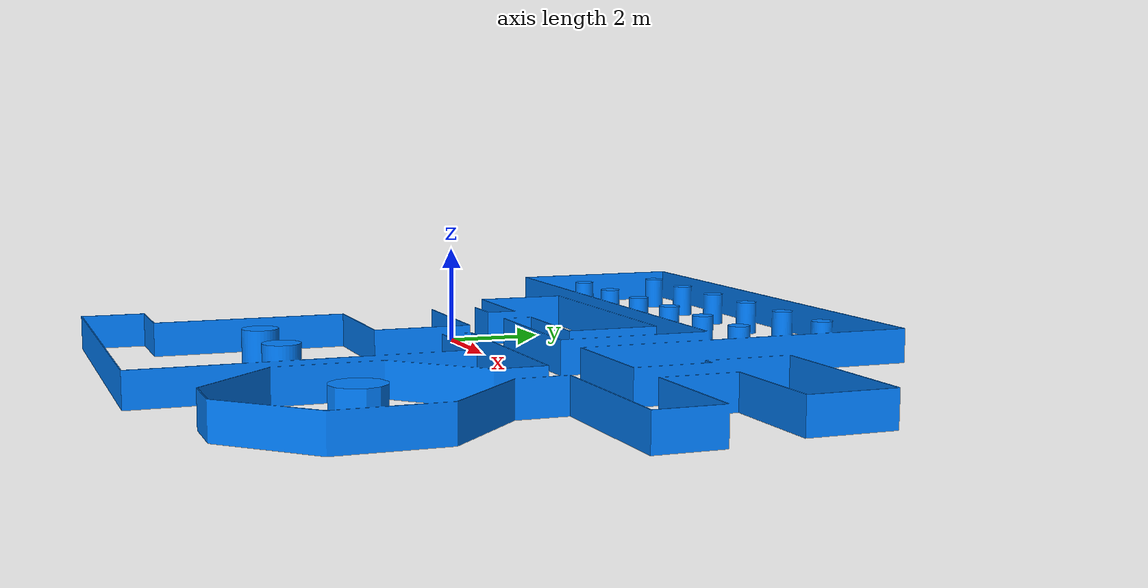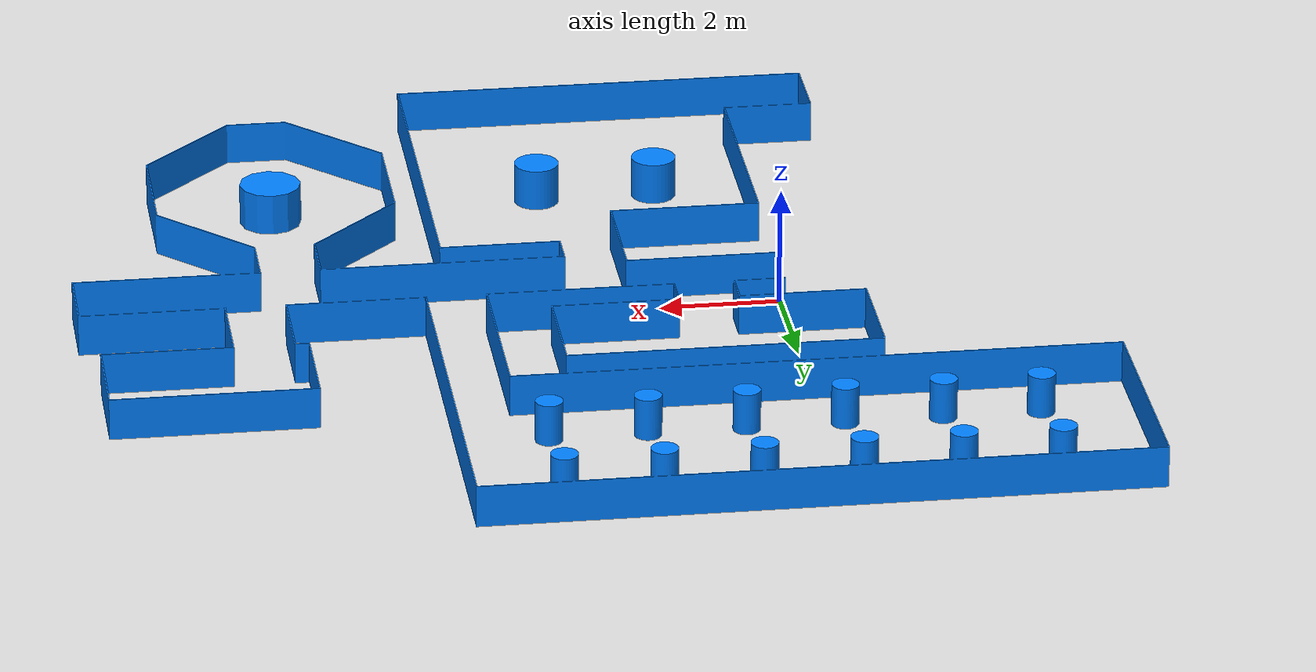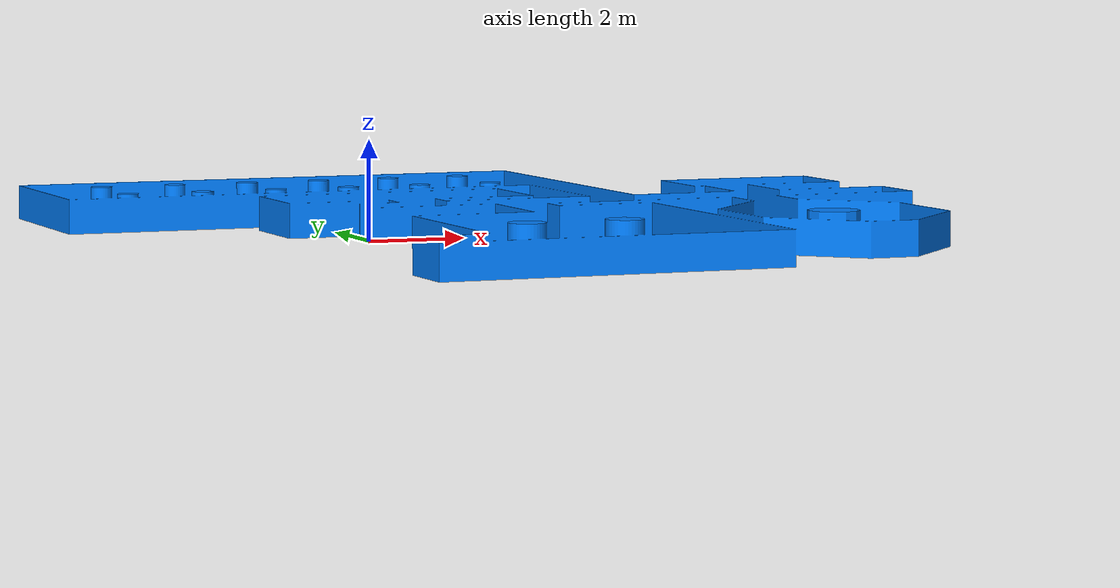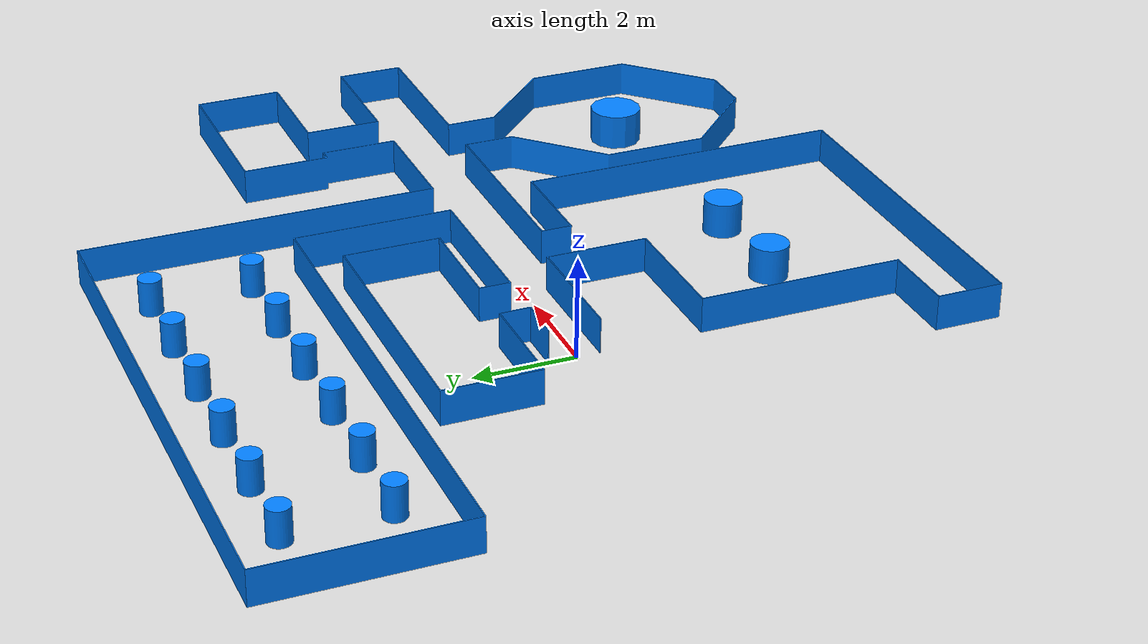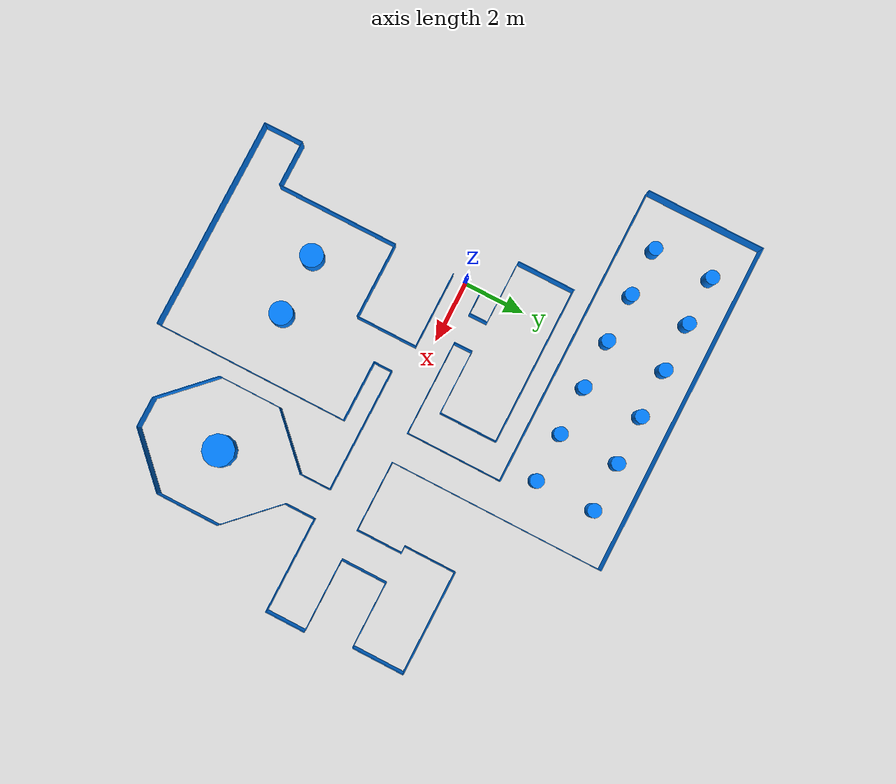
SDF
<?xml version="1.0" ?>
<sdf version="1.6">
  <model name="room_world">
  <static>true</static>
  <link name="room_world_link">
    <pose>0 0 0 0 0 0</pose>
    <collision name="room_world_link_collision">
      <pose>0 0 0 0 0 0</pose>
      <geometry>
        <mesh>
          <uri>../worlds/world.STL</uri>
          <scale>1.0 1.0 1.0</scale>
        </mesh>
      </geometry>
    </collision>

    <visual name="room_world_link_visual">
      <pose>0 0 0 0 0 0</pose>
      <geometry>
        <mesh>
          <uri>../worlds/world.STL</uri>
          <scale>1.0 1.0 1.0</scale>
        </mesh>
      </geometry>
      <material>
          <ambient>0.0 0.5 1.0 1.0</ambient>
          <diffuse>0.0 0.5 1.0 1.0</diffuse>
          <specular>0.1 0.1 0.1 1.0</specular>
          <emissive>0.0 0.0 0.0 1.0</emissive>
      </material>
    </visual>
  </link>
  </model>
</sdf>
